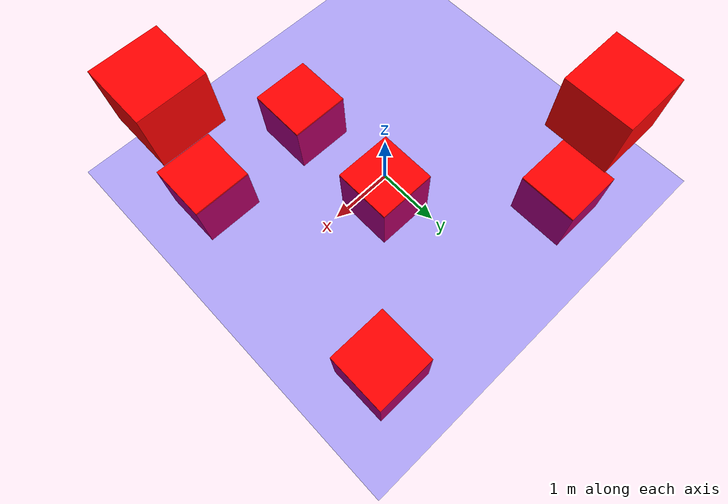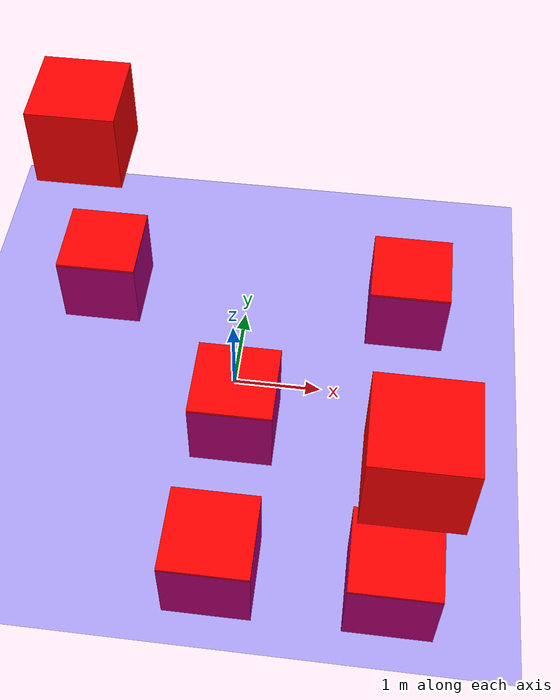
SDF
<?xml version="1.0" ?>
<sdf version="1.10">
    <!-- IMPORTANT
        Ensure that Gazebo Can find the custom plugins created in this world by typing the following command in the terminal:
        "export GZ_SIM_SYSTEM_PLUGIN_PATH=`pwd`"
    -->
    <world name="CompetitionWorld2025">
        <gravity>0 0 -9.81</gravity>
        <physics name="1ms" type="ignored">
            <max_step_size>0.003</max_step_size>
            <real_time_factor>1.0</real_time_factor>
        </physics>
        <plugin
            filename="gz-sim-physics-system"
            name="gz::sim::systems::Physics">
        </plugin>
        <plugin
            filename="gz-sim-sensors-system"
            name="gz::sim::systems::Sensors">
            <render_engine>ogre2</render_engine>
        </plugin>
        <plugin
            filename="gz-sim-imu-system"
            name="gz::sim::systems::Imu">
        </plugin>
        <plugin
            filename="gz-sim-user-commands-system"
            name="gz::sim::systems::UserCommands">
        </plugin>
        <plugin
            filename="gz-sim-scene-broadcaster-system"
            name="gz::sim::systems::SceneBroadcaster">
        </plugin>

        <light type="directional" name="sun">
            <cast_shadows>true</cast_shadows>
            <pose>0 0 10 0 0 0</pose>
            <diffuse>0.8 0.8 0.8 1</diffuse>
            <specular>0.2 0.2 0.2 1</specular>
            <attenuation>
                <range>1000</range>
                <constant>0.9</constant>
                <linear>0.01</linear>
                <quadratic>0.001</quadratic>
            </attenuation>
            <direction>-0.5 0.1 -0.9</direction>
        </light>
        <model name='water_plane'>
            <static>true</static>
            <link name='link'>
              <visual name='water_plane'>
                <geometry>
                  <plane>
                    <size>100 100</size>
                    <normal>0 0 1</normal>
                  </plane>
                </geometry>
                <material>
                  <ambient>0 0 1 0.5</ambient>
                  <diffuse>0 0 1 0.5</diffuse>
                  <specular>0 0 1 0.5</specular>
                </material>
              </visual>
              <pose>0 0 0 0 0 0</pose>
              <inertial>
                <pose>0 0 0 0 0 0</pose>
                <mass>1</mass>
                <inertia>
                  <ixx>1</ixx>
                  <ixy>0</ixy>
                  <ixz>0</ixz>
                  <iyy>1</iyy>
                  <iyz>0</iyz>
                  <izz>1</izz>
                </inertia>
              </inertial>
              <enable_wind>false</enable_wind>
            </link>
            <pose>0 0 0 0 0 0</pose>
            <self_collide>false</self_collide>
          </model>
        <model name="ground_plane">
            <static>true</static>
            <pose>0 0 -4 0 0 0</pose>
            <link name="link">
                <collision name="collision">
                <geometry>
                    <plane>
                    <normal>0 0 1</normal>
                    </plane>
                </geometry>
                </collision>
                <visual name="visual">
                <geometry>
                    <plane>
                    <normal>0 0 1</normal>
                    <size>100 100</size>
                    </plane>
                </geometry>
                <material>
                    <ambient>0.8 0.8 0.8 1</ambient>
                    <diffuse>0.8 0.8 0.8 1</diffuse>
                    <specular>0.8 0.8 0.8 1</specular>
                </material>
                </visual>
            </link>
        </model>
        <model name="red_box">
            <static>true</static>
            <pose>0 0 -0.48 0 0 0</pose>
            <link name="red_box_link">
                <visual name="red_box_visual">
                    <geometry>
                    <box>
                        <size>1 1 1</size>
                    </box>
                    </geometry>
                    <material>
                    <ambient>1 0 0 1</ambient>
                    <diffuse>1 0 0 1</diffuse>
                    <specular>1 0 0 1</specular>
                    </material>
                </visual>
                <collision name="red_box_collision">
                    <geometry>
                    <box>
                        <size>1 1 1</size>
                    </box>
                    </geometry>
                </collision>
            </link>
        </model>
        <model name="red_box_2">
            <static>true</static>
            <pose>0 -2 -0.48 0 0 0</pose>
            <link name="red_box_link_2">
                <visual name="red_box_visual_2">
                    <geometry>
                    <box>
                        <size>1 1 1</size>
                    </box>
                    </geometry>
                    <material>
                    <ambient>1 0 0 1</ambient>
                    <diffuse>1 0 0 1</diffuse>
                    <specular>1 0 0 1</specular>
                    </material>
                </visual>
                <collision name="red_box_collision_2">
                    <geometry>
                    <box>
                        <size>1 1 1</size>
                    </box>
                    </geometry>
                </collision>
            </link>
        </model>
        <model name="red_box_3">
            <static>true</static>
            <pose>2 -2 -0.48 0 0 0</pose>
            <link name="red_box_link_3">
            <visual name="red_box_visual_3">
                <geometry>
                <box>
                <size>1 1 1</size>
                </box>
                </geometry>
                <material>
                <ambient>1 0 0 1</ambient>
                <diffuse>1 0 0 1</diffuse>
                <specular>1 0 0 1</specular>
                </material>
            </visual>
            <collision name="red_box_collision_3">
                <geometry>
                <box>
                <size>1 1 1</size>
                </box>
                </geometry>
            </collision>
            </link>
        </model>
        <model name="red_box_4">
            <static>true</static>
            <pose>2 2 -0.48 0 0 0</pose>
            <link name="red_box_link_4">
            <visual name="red_box_visual_4">
                <geometry>
                <box>
                <size>1 1 1</size>
                </box>
                </geometry>
                <material>
                <ambient>1 0 0 1</ambient>
                <diffuse>1 0 0 1</diffuse>
                <specular>1 0 0 1</specular>
                </material>
            </visual>
            <collision name="red_box_collision_4">
                <geometry>
                <box>
                <size>1 1 1</size>
                </box>
                </geometry>
            </collision>
            </link>
        </model>
        <model name="red_box_5">
            <static>true</static>
            <pose>-2 2 -0.48 0 0 0</pose>
            <link name="red_box_link_5">
            <visual name="red_box_visual_5">
                <geometry>
                <box>
                <size>1 1 1</size>
                </box>
                </geometry>
                <material>
                <ambient>1 0 0 1</ambient>
                <diffuse>1 0 0 1</diffuse>
                <specular>1 0 0 1</specular>
                </material>
            </visual>
            <collision name="red_box_collision_5">
                <geometry>
                <box>
                <size>1 1 1</size>
                </box>
                </geometry>
            </collision>
            </link>
        </model>
        <model name="red_box_6">
            <static>true</static>
            <pose>-2 2 2 0 0 0</pose>
            <link name="red_box_link_6">
            <visual name="red_box_visual_6">
                <geometry>
                <box>
                <size>1 1 1</size>
                </box>
                </geometry>
                <material>
                <ambient>1 0 0 1</ambient>
                <diffuse>1 0 0 1</diffuse>
                <specular>1 0 0 1</specular>
                </material>
            </visual>
            <collision name="red_box_collision_6">
                <geometry>
                <box>
                <size>1 1 1</size>
                </box>
                </geometry>
            </collision>
            </link>
        </model>

        <model name="red_box_7">
            <static>true</static>
            <pose>2 -2 2 0 0 0</pose>
            <link name="red_box_link_7">
            <visual name="red_box_visual_7">
                <geometry>
                <box>
                <size>1 1 1</size>
                </box>
                </geometry>
                <material>
                <ambient>1 0 0 1</ambient>
                <diffuse>1 0 0 1</diffuse>
                <specular>1 0 0 1</specular>
                </material>
            </visual>
            <collision name="red_box_collision_7">
                <geometry>
                <box>
                <size>1 1 1</size>
                </box>
                </geometry>
            </collision>
            </link>
        </model>
    </world>
</sdf>
